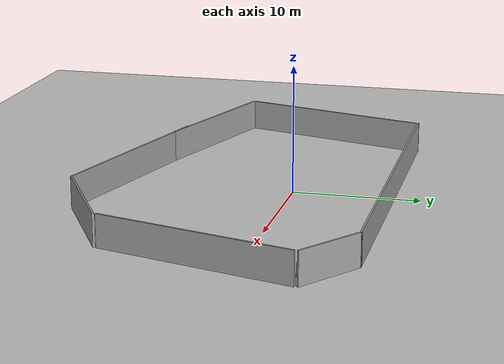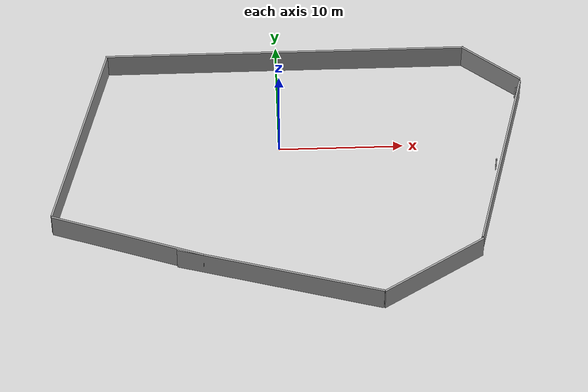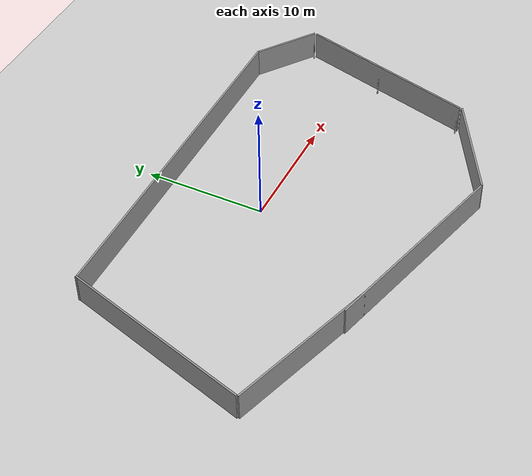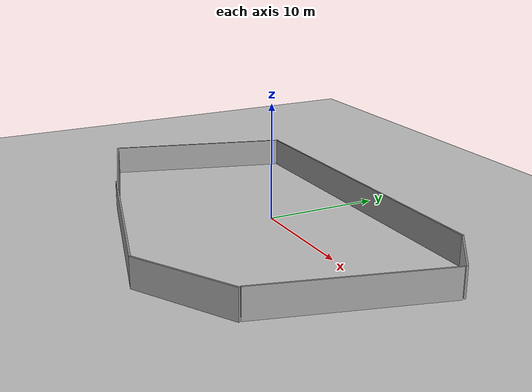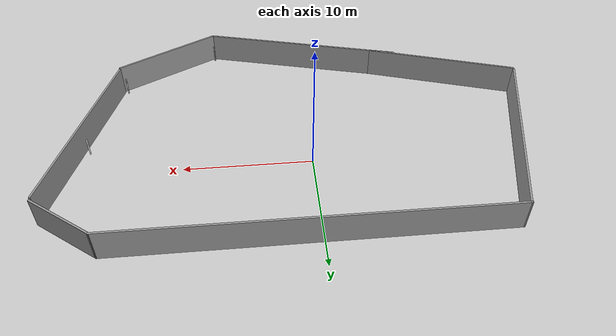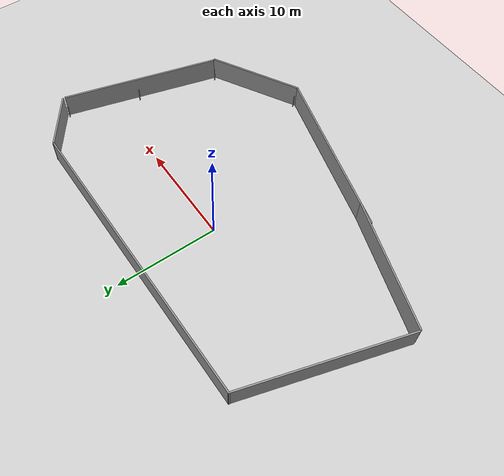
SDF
<sdf version="1.7">
 <world name="default">
  <model name="ground_plane">
   <static>1</static>
   <link name="link">
    <collision name="collision">
     <geometry><plane><normal>0 0 1</normal><size>100 100</size></plane></geometry>
     <surface><friction><ode><mu>100</mu><mu2>50</mu2></ode></friction></surface>
    </collision>
    <visual name="visual">
     <cast_shadows>0</cast_shadows>
     <geometry><plane><normal>0 0 1</normal><size>50 50</size></plane></geometry>
     <material>
      <script><uri>file://media/materials/scripts/gazebo.material</uri><name>Gazebo/Grey</name></script>
     </material>
    </visual>
   </link>
  </model>
  <model name="building">
   <link name="Wall_0">
    <pose>-18.962 0.546869 0 0 -0 1.28876</pose>
    <inertial>
     <inertia><ixx>0</ixx><ixy>0</ixy><ixz>0</ixz><iyy>0</iyy><iyz>0</iyz><izz>0</izz></inertia>
     <mass>0</mass>
    </inertial>
    <visual name="Wall_0_Visual">
     <pose>0 0 1.25 0 -0 0</pose>
     <geometry><box><size>16.047 0.15 2.5</size></box></geometry>
     <material>
      <script><uri>file://media/materials/scripts/gazebo.material</uri><name>Gazebo/Grey</name></script>
      <ambient>1 1 1 1</ambient>
      <shader type="pixel"/>
     </material>
     <meta><layer>0</layer></meta>
    </visual>
    <collision name="Wall_0_Collision">
     <pose>0 0 1.25 0 -0 0</pose>
     <geometry><box><size>16.047 0.15 2.5</size></box></geometry>
     <surface>
      <friction>
       <ode><mu>1</mu><mu2>1</mu2><fdir1>0 0 0</fdir1><slip1>0</slip1><slip2>0</slip2></ode>
       <torsional>
        <coefficient>1</coefficient>
        <patch_radius>0</patch_radius>
        <surface_radius>0</surface_radius>
        <use_patch_radius>1</use_patch_radius>
        <ode><slip>0</slip></ode>
       </torsional>
      </friction>
      <bounce><restitution_coefficient>0</restitution_coefficient><threshold>1e+06</threshold></bounce>
      <contact>
       <collide_without_contact>0</collide_without_contact>
       <collide_without_contact_bitmask>1</collide_without_contact_bitmask>
       <collide_bitmask>1</collide_bitmask>
       <ode>
        <soft_cfm>0</soft_cfm>
        <soft_erp>0.2</soft_erp>
        <kp>1e+13</kp>
        <kd>1</kd>
        <max_vel>0.01</max_vel>
        <min_depth>0</min_depth>
       </ode>
       <bullet>
        <split_impulse>1</split_impulse>
        <split_impulse_penetration_threshold>-0.01</split_impulse_penetration_threshold>
        <soft_cfm>0</soft_cfm>
        <soft_erp>0.2</soft_erp>
        <kp>1e+13</kp>
        <kd>1</kd>
       </bullet>
      </contact>
     </surface>
    </collision>
   </link>
   <link name="Wall_1">
    <pose>-2.22989 8.18052 0 0 -0 0</pose>
    <visual name="Wall_1_Visual">
     <pose>0 0 1.25 0 -0 0</pose>
     <geometry><box><size>29.25 0.15 2.5</size></box></geometry>
     <material>
      <script><uri>file://media/materials/scripts/gazebo.material</uri><name>Gazebo/Grey</name></script>
      <ambient>1 1 1 1</ambient>
      <shader type="pixel"/>
     </material>
     <meta><layer>0</layer></meta>
    </visual>
    <collision name="Wall_1_Collision">
     <pose>0 0 1.25 0 -0 0</pose>
     <geometry><box><size>29.25 0.15 2.5</size></box></geometry>
     <surface>
      <friction>
       <ode><mu>1</mu><mu2>1</mu2><fdir1>0 0 0</fdir1><slip1>0</slip1><slip2>0</slip2></ode>
       <torsional>
        <coefficient>1</coefficient>
        <patch_radius>0</patch_radius>
        <surface_radius>0</surface_radius>
        <use_patch_radius>1</use_patch_radius>
        <ode><slip>0</slip></ode>
       </torsional>
      </friction>
      <bounce><restitution_coefficient>0</restitution_coefficient><threshold>1e+06</threshold></bounce>
      <contact>
       <collide_without_contact>0</collide_without_contact>
       <collide_without_contact_bitmask>1</collide_without_contact_bitmask>
       <collide_bitmask>1</collide_bitmask>
       <ode>
        <soft_cfm>0</soft_cfm>
        <soft_erp>0.2</soft_erp>
        <kp>1e+13</kp>
        <kd>1</kd>
        <max_vel>0.01</max_vel>
        <min_depth>0</min_depth>
       </ode>
       <bullet>
        <split_impulse>1</split_impulse>
        <split_impulse_penetration_threshold>-0.01</split_impulse_penetration_threshold>
        <soft_cfm>0</soft_cfm>
        <soft_erp>0.2</soft_erp>
        <kp>1e+13</kp>
        <kd>1</kd>
       </bullet>
      </contact>
     </surface>
    </collision>
   </link>
   <link name="Wall_3">
    <pose>-15.2019 -9.22193 0 0 0 -0.317638</pose>
    <inertial>
     <inertia><ixx>0</ixx><ixy>0</ixy><ixz>0</ixz><iyy>0</iyy><iyz>0</iyz><izz>0</izz></inertia>
     <mass>0</mass>
    </inertial>
    <visual name="Wall_3_Visual">
     <pose>0 0 1.25 0 -0 0</pose>
     <geometry><box><size>12.615 0.15 2.5</size></box></geometry>
     <material>
      <script><uri>file://media/materials/scripts/gazebo.material</uri><name>Gazebo/Grey</name></script>
      <ambient>1 1 1 1</ambient>
      <shader type="pixel"/>
     </material>
     <meta><layer>0</layer></meta>
    </visual>
    <collision name="Wall_3_Collision">
     <pose>0 0 1.25 0 -0 0</pose>
     <geometry><box><size>12.615 0.15 2.5</size></box></geometry>
     <surface>
      <friction>
       <ode><mu>1</mu><mu2>1</mu2><fdir1>0 0 0</fdir1><slip1>0</slip1><slip2>0</slip2></ode>
       <torsional>
        <coefficient>1</coefficient>
        <patch_radius>0</patch_radius>
        <surface_radius>0</surface_radius>
        <use_patch_radius>1</use_patch_radius>
        <ode><slip>0</slip></ode>
       </torsional>
      </friction>
      <bounce><restitution_coefficient>0</restitution_coefficient><threshold>1e+06</threshold></bounce>
      <contact>
       <collide_without_contact>0</collide_without_contact>
       <collide_without_contact_bitmask>1</collide_without_contact_bitmask>
       <collide_bitmask>1</collide_bitmask>
       <ode>
        <soft_cfm>0</soft_cfm>
        <soft_erp>0.2</soft_erp>
        <kp>1e+13</kp>
        <kd>1</kd>
        <max_vel>0.01</max_vel>
        <min_depth>0</min_depth>
       </ode>
       <bullet>
        <split_impulse>1</split_impulse>
        <split_impulse_penetration_threshold>-0.01</split_impulse_penetration_threshold>
        <soft_cfm>0</soft_cfm>
        <soft_erp>0.2</soft_erp>
        <kp>1e+13</kp>
        <kd>1</kd>
       </bullet>
      </contact>
     </surface>
    </collision>
   </link>
   <link name="Wall_4">
    <pose>-3.23249 -12.7928 0 0 0 -0.261799</pose>
    <visual name="Wall_4_Visual">
     <pose>0 0 1.25 0 -0 0</pose>
     <geometry><box><size>16.75 0.15 2.5</size></box></geometry>
     <material>
      <script><uri>file://media/materials/scripts/gazebo.material</uri><name>Gazebo/Grey</name></script>
      <ambient>1 1 1 1</ambient>
      <shader type="pixel"/>
     </material>
     <meta><layer>0</layer></meta>
    </visual>
    <collision name="Wall_4_Collision">
     <pose>0 0 1.25 0 -0 0</pose>
     <geometry><box><size>16.75 0.15 2.5</size></box></geometry>
     <surface>
      <friction>
       <ode><mu>1</mu><mu2>1</mu2><fdir1>0 0 0</fdir1><slip1>0</slip1><slip2>0</slip2></ode>
       <torsional>
        <coefficient>1</coefficient>
        <patch_radius>0</patch_radius>
        <surface_radius>0</surface_radius>
        <use_patch_radius>1</use_patch_radius>
        <ode><slip>0</slip></ode>
       </torsional>
      </friction>
      <bounce><restitution_coefficient>0</restitution_coefficient><threshold>1e+06</threshold></bounce>
      <contact>
       <collide_without_contact>0</collide_without_contact>
       <collide_without_contact_bitmask>1</collide_without_contact_bitmask>
       <collide_bitmask>1</collide_bitmask>
       <ode>
        <soft_cfm>0</soft_cfm>
        <soft_erp>0.2</soft_erp>
        <kp>1e+13</kp>
        <kd>1</kd>
        <max_vel>0.01</max_vel>
        <min_depth>0</min_depth>
       </ode>
       <bullet>
        <split_impulse>1</split_impulse>
        <split_impulse_penetration_threshold>-0.01</split_impulse_penetration_threshold>
        <soft_cfm>0</soft_cfm>
        <soft_erp>0.2</soft_erp>
        <kp>1e+13</kp>
        <kd>1</kd>
       </bullet>
      </contact>
     </surface>
    </collision>
   </link>
   <link name="Wall_5">
    <pose>8.8882 -12.6818 0 0 -0 0.523599</pose>
    <visual name="Wall_5_Visual">
     <pose>0 0 1.25 0 -0 0</pose>
     <geometry><box><size>9.25 0.15 2.5</size></box></geometry>
     <material>
      <script><uri>file://media/materials/scripts/gazebo.material</uri><name>Gazebo/Grey</name></script>
      <ambient>1 1 1 1</ambient>
      <shader type="pixel"/>
     </material>
     <meta><layer>0</layer></meta>
    </visual>
    <collision name="Wall_5_Collision">
     <pose>0 0 1.25 0 -0 0</pose>
     <geometry><box><size>9.25 0.15 2.5</size></box></geometry>
     <surface>
      <friction>
       <ode><mu>1</mu><mu2>1</mu2><fdir1>0 0 0</fdir1><slip1>0</slip1><slip2>0</slip2></ode>
       <torsional>
        <coefficient>1</coefficient>
        <patch_radius>0</patch_radius>
        <surface_radius>0</surface_radius>
        <use_patch_radius>1</use_patch_radius>
        <ode><slip>0</slip></ode>
       </torsional>
      </friction>
      <bounce><restitution_coefficient>0</restitution_coefficient><threshold>1e+06</threshold></bounce>
      <contact>
       <collide_without_contact>0</collide_without_contact>
       <collide_without_contact_bitmask>1</collide_without_contact_bitmask>
       <collide_bitmask>1</collide_bitmask>
       <ode>
        <soft_cfm>0</soft_cfm>
        <soft_erp>0.2</soft_erp>
        <kp>1e+13</kp>
        <kd>1</kd>
        <max_vel>0.01</max_vel>
        <min_depth>0</min_depth>
       </ode>
       <bullet>
        <split_impulse>1</split_impulse>
        <split_impulse_penetration_threshold>-0.01</split_impulse_penetration_threshold>
        <soft_cfm>0</soft_cfm>
        <soft_erp>0.2</soft_erp>
        <kp>1e+13</kp>
        <kd>1</kd>
       </bullet>
      </contact>
     </surface>
    </collision>
   </link>
   <link name="Wall_6">
    <pose>14.8114 -2.77564 0 0 -0 1.309</pose>
    <inertial>
     <inertia><ixx>0</ixx><ixy>0</ixy><ixz>0</ixz><iyy>0</iyy><iyz>0</iyz><izz>0</izz></inertia>
     <mass>0</mass>
    </inertial>
    <visual name="Wall_6_Visual">
     <pose>0 0 1.25 0 -0 0</pose>
     <geometry><box><size>15.4065 0.15 2.5</size></box></geometry>
     <material>
      <script><uri>file://media/materials/scripts/gazebo.material</uri><name>Gazebo/Grey</name></script>
      <ambient>1 1 1 1</ambient>
      <shader type="pixel"/>
     </material>
     <meta><layer>0</layer></meta>
    </visual>
    <collision name="Wall_6_Collision">
     <pose>0 0 1.25 0 -0 0</pose>
     <geometry><box><size>15.4065 0.15 2.5</size></box></geometry>
     <surface>
      <friction>
       <ode><mu>1</mu><mu2>1</mu2><fdir1>0 0 0</fdir1><slip1>0</slip1><slip2>0</slip2></ode>
       <torsional>
        <coefficient>1</coefficient>
        <patch_radius>0</patch_radius>
        <surface_radius>0</surface_radius>
        <use_patch_radius>1</use_patch_radius>
        <ode><slip>0</slip></ode>
       </torsional>
      </friction>
      <bounce><restitution_coefficient>0</restitution_coefficient><threshold>1e+06</threshold></bounce>
      <contact>
       <collide_without_contact>0</collide_without_contact>
       <collide_without_contact_bitmask>1</collide_without_contact_bitmask>
       <collide_bitmask>1</collide_bitmask>
       <ode>
        <soft_cfm>0</soft_cfm>
        <soft_erp>0.2</soft_erp>
        <kp>1e+13</kp>
        <kd>1</kd>
        <max_vel>0.01</max_vel>
        <min_depth>0</min_depth>
       </ode>
       <bullet>
        <split_impulse>1</split_impulse>
        <split_impulse_penetration_threshold>-0.01</split_impulse_penetration_threshold>
        <soft_cfm>0</soft_cfm>
        <soft_erp>0.2</soft_erp>
        <kp>1e+13</kp>
        <kd>1</kd>
       </bullet>
      </contact>
     </surface>
    </collision>
   </link>
   <link name="Wall_7">
    <pose>14.5435 6.54803 0 0 -0 2.50826</pose>
    <visual name="Wall_7_Visual">
     <pose>0 0 1.25 0 -0 0</pose>
     <geometry><box><size>5.6667 0.15 2.5</size></box></geometry>
     <material>
      <script><uri>file://media/materials/scripts/gazebo.material</uri><name>Gazebo/Grey</name></script>
      <ambient>1 1 1 1</ambient>
      <shader type="pixel"/>
     </material>
     <meta><layer>0</layer></meta>
    </visual>
    <collision name="Wall_7_Collision">
     <pose>0 0 1.25 0 -0 0</pose>
     <geometry><box><size>5.6667 0.15 2.5</size></box></geometry>
     <surface>
      <friction>
       <ode><mu>1</mu><mu2>1</mu2><fdir1>0 0 0</fdir1><slip1>0</slip1><slip2>0</slip2></ode>
       <torsional>
        <coefficient>1</coefficient>
        <patch_radius>0</patch_radius>
        <surface_radius>0</surface_radius>
        <use_patch_radius>1</use_patch_radius>
        <ode><slip>0</slip></ode>
       </torsional>
      </friction>
      <bounce><restitution_coefficient>0</restitution_coefficient><threshold>1e+06</threshold></bounce>
      <contact>
       <collide_without_contact>0</collide_without_contact>
       <collide_without_contact_bitmask>1</collide_without_contact_bitmask>
       <collide_bitmask>1</collide_bitmask>
       <ode>
        <soft_cfm>0</soft_cfm>
        <soft_erp>0.2</soft_erp>
        <kp>1e+13</kp>
        <kd>1</kd>
        <max_vel>0.01</max_vel>
        <min_depth>0</min_depth>
       </ode>
       <bullet>
        <split_impulse>1</split_impulse>
        <split_impulse_penetration_threshold>-0.01</split_impulse_penetration_threshold>
        <soft_cfm>0</soft_cfm>
        <soft_erp>0.2</soft_erp>
        <kp>1e+13</kp>
        <kd>1</kd>
       </bullet>
      </contact>
     </surface>
    </collision>
   </link>
   <static>1</static>
   <pose>2.9077 -0.277969 0 0 -0 0</pose>
  </model>
  <model name="reflector_0">
   <link name="link">
    <inertial>
     <mass>1</mass>
     <inertia><ixx>0.145833</ixx><ixy>0</ixy><ixz>0</ixz><iyy>0.145833</iyy><iyz>0</iyz><izz>0.125</izz></inertia>
    </inertial>
    <visual name="visual">
     <geometry><cylinder><radius>0.05</radius><length>3</length></cylinder></geometry>
     <material>
      <ambient>0.99 0 0 1</ambient>
      <shader type="pixel"><normal_map>__default__</normal_map></shader>
      <script><name>ModelPreview_1::link::visual_MATERIAL_</name><uri>__default__</uri></script>
      <diffuse>1 1 1 1</diffuse>
      <specular>0 0 0 1</specular>
      <emissive>0 0 0 1</emissive>
     </material>
    </visual>
    <collision name="collision">
     <laser_retro>1000</laser_retro>
     <geometry><cylinder><radius>0.05</radius><length>3</length></cylinder></geometry>
     <surface>
      <friction>
       <ode><mu>1</mu><mu2>1</mu2><fdir1>0 0 0</fdir1><slip1>0</slip1><slip2>0</slip2></ode>
       <torsional>
        <coefficient>1</coefficient>
        <patch_radius>0</patch_radius>
        <surface_radius>0</surface_radius>
        <use_patch_radius>1</use_patch_radius>
        <ode><slip>0</slip></ode>
       </torsional>
      </friction>
      <bounce><restitution_coefficient>0</restitution_coefficient><threshold>1e+06</threshold></bounce>
      <contact>
       <collide_without_contact>0</collide_without_contact>
       <collide_without_contact_bitmask>1</collide_without_contact_bitmask>
       <collide_bitmask>1</collide_bitmask>
       <ode>
        <soft_cfm>0</soft_cfm>
        <soft_erp>0.2</soft_erp>
        <kp>1e+13</kp>
        <kd>1</kd>
        <max_vel>0.01</max_vel>
        <min_depth>0</min_depth>
       </ode>
       <bullet>
        <split_impulse>1</split_impulse>
        <split_impulse_penetration_threshold>-0.01</split_impulse_penetration_threshold>
        <soft_cfm>0</soft_cfm>
        <soft_erp>0.2</soft_erp>
        <kp>1e+13</kp>
        <kd>1</kd>
       </bullet>
      </contact>
     </surface>
    </collision>
   </link>
   <static>1</static>
   <pose>15.3998 -10.3917 0 0 -0 0</pose>
  </model>
  <model name="reflector_0_clone">
   <link name="link">
    <inertial>
     <mass>1</mass>
     <inertia><ixx>0.145833</ixx><ixy>0</ixy><ixz>0</ixz><iyy>0.145833</iyy><iyz>0</iyz><izz>0.125</izz></inertia>
    </inertial>
    <visual name="visual">
     <geometry><cylinder><radius>0.05</radius><length>3</length></cylinder></geometry>
     <material>
      <ambient>0.99 0 0 1</ambient>
      <shader type="pixel"><normal_map>__default__</normal_map></shader>
      <script><name>ModelPreview_1::link::visual_MATERIAL_</name><uri>__default__</uri></script>
      <diffuse>1 1 1 1</diffuse>
      <specular>0 0 0 1</specular>
      <emissive>0 0 0 1</emissive>
     </material>
    </visual>
    <collision name="collision">
     <laser_retro>1000</laser_retro>
     <geometry><cylinder><radius>0.05</radius><length>3</length></cylinder></geometry>
     <surface>
      <friction>
       <ode><mu>1</mu><mu2>1</mu2><fdir1>0 0 0</fdir1><slip1>0</slip1><slip2>0</slip2></ode>
       <torsional>
        <coefficient>1</coefficient>
        <patch_radius>0</patch_radius>
        <surface_radius>0</surface_radius>
        <use_patch_radius>1</use_patch_radius>
        <ode><slip>0</slip></ode>
       </torsional>
      </friction>
      <bounce><restitution_coefficient>0</restitution_coefficient><threshold>1e+06</threshold></bounce>
      <contact>
       <collide_without_contact>0</collide_without_contact>
       <collide_without_contact_bitmask>1</collide_without_contact_bitmask>
       <collide_bitmask>1</collide_bitmask>
       <ode>
        <soft_cfm>0</soft_cfm>
        <soft_erp>0.2</soft_erp>
        <kp>1e+13</kp>
        <kd>1</kd>
        <max_vel>0.01</max_vel>
        <min_depth>0</min_depth>
       </ode>
       <bullet>
        <split_impulse>1</split_impulse>
        <split_impulse_penetration_threshold>-0.01</split_impulse_penetration_threshold>
        <soft_cfm>0</soft_cfm>
        <soft_erp>0.2</soft_erp>
        <kp>1e+13</kp>
        <kd>1</kd>
       </bullet>
      </contact>
     </surface>
    </collision>
   </link>
   <static>1</static>
   <pose>7.82077 -14.9385 0 0 -0 0</pose>
  </model>
  <model name="reflector_0_clone_0">
   <link name="link">
    <inertial>
     <mass>1</mass>
     <inertia><ixx>0.145833</ixx><ixy>0</ixy><ixz>0</ixz><iyy>0.145833</iyy><iyz>0</iyz><izz>0.125</izz></inertia>
    </inertial>
    <visual name="visual">
     <geometry><cylinder><radius>0.05</radius><length>3</length></cylinder></geometry>
     <material>
      <ambient>0.99 0 0 1</ambient>
      <shader type="pixel"><normal_map>__default__</normal_map></shader>
      <script><name>ModelPreview_1::link::visual_MATERIAL_</name><uri>__default__</uri></script>
      <diffuse>1 1 1 1</diffuse>
      <specular>0 0 0 1</specular>
      <emissive>0 0 0 1</emissive>
     </material>
    </visual>
    <collision name="collision">
     <laser_retro>1000</laser_retro>
     <geometry><cylinder><radius>0.05</radius><length>3</length></cylinder></geometry>
     <surface>
      <friction>
       <ode><mu>1</mu><mu2>1</mu2><fdir1>0 0 0</fdir1><slip1>0</slip1><slip2>0</slip2></ode>
       <torsional>
        <coefficient>1</coefficient>
        <patch_radius>0</patch_radius>
        <surface_radius>0</surface_radius>
        <use_patch_radius>1</use_patch_radius>
        <ode><slip>0</slip></ode>
       </torsional>
      </friction>
      <bounce><restitution_coefficient>0</restitution_coefficient><threshold>1e+06</threshold></bounce>
      <contact>
       <collide_without_contact>0</collide_without_contact>
       <collide_without_contact_bitmask>1</collide_without_contact_bitmask>
       <collide_bitmask>1</collide_bitmask>
       <ode>
        <soft_cfm>0</soft_cfm>
        <soft_erp>0.2</soft_erp>
        <kp>1e+13</kp>
        <kd>1</kd>
        <max_vel>0.01</max_vel>
        <min_depth>0</min_depth>
       </ode>
       <bullet>
        <split_impulse>1</split_impulse>
        <split_impulse_penetration_threshold>-0.01</split_impulse_penetration_threshold>
        <soft_cfm>0</soft_cfm>
        <soft_erp>0.2</soft_erp>
        <kp>1e+13</kp>
        <kd>1</kd>
       </bullet>
      </contact>
     </surface>
    </collision>
   </link>
   <static>1</static>
   <pose>17.3966 -2.51648 0 0 -0 0</pose>
  </model>
  <model name="reflector_0_clone_1">
   <link name="link">
    <inertial>
     <mass>1</mass>
     <inertia><ixx>0.145833</ixx><ixy>0</ixy><ixz>0</ixz><iyy>0.145833</iyy><iyz>0</iyz><izz>0.125</izz></inertia>
    </inertial>
    <visual name="visual">
     <geometry><cylinder><radius>0.05</radius><length>3</length></cylinder></geometry>
     <material>
      <ambient>0.99 0 0 1</ambient>
      <shader type="pixel"><normal_map>__default__</normal_map></shader>
      <script><name>ModelPreview_1::link::visual_MATERIAL_</name><uri>__default__</uri></script>
      <diffuse>1 1 1 1</diffuse>
      <specular>0 0 0 1</specular>
      <emissive>0 0 0 1</emissive>
     </material>
    </visual>
    <collision name="collision">
     <laser_retro>1000</laser_retro>
     <geometry><cylinder><radius>0.05</radius><length>3</length></cylinder></geometry>
     <surface>
      <friction>
       <ode><mu>1</mu><mu2>1</mu2><fdir1>0 0 0</fdir1><slip1>0</slip1><slip2>0</slip2></ode>
       <torsional>
        <coefficient>1</coefficient>
        <patch_radius>0</patch_radius>
        <surface_radius>0</surface_radius>
        <use_patch_radius>1</use_patch_radius>
        <ode><slip>0</slip></ode>
       </torsional>
      </friction>
      <bounce><restitution_coefficient>0</restitution_coefficient><threshold>1e+06</threshold></bounce>
      <contact>
       <collide_without_contact>0</collide_without_contact>
       <collide_without_contact_bitmask>1</collide_without_contact_bitmask>
       <collide_bitmask>1</collide_bitmask>
       <ode>
        <soft_cfm>0</soft_cfm>
        <soft_erp>0.2</soft_erp>
        <kp>1e+13</kp>
        <kd>1</kd>
        <max_vel>0.01</max_vel>
        <min_depth>0</min_depth>
       </ode>
       <bullet>
        <split_impulse>1</split_impulse>
        <split_impulse_penetration_threshold>-0.01</split_impulse_penetration_threshold>
        <soft_cfm>0</soft_cfm>
        <soft_erp>0.2</soft_erp>
        <kp>1e+13</kp>
        <kd>1</kd>
       </bullet>
      </contact>
     </surface>
    </collision>
   </link>
   <static>1</static>
   <pose>19.4162 4.46814 0 0 -0 0</pose>
  </model>
 </world>
</sdf>
